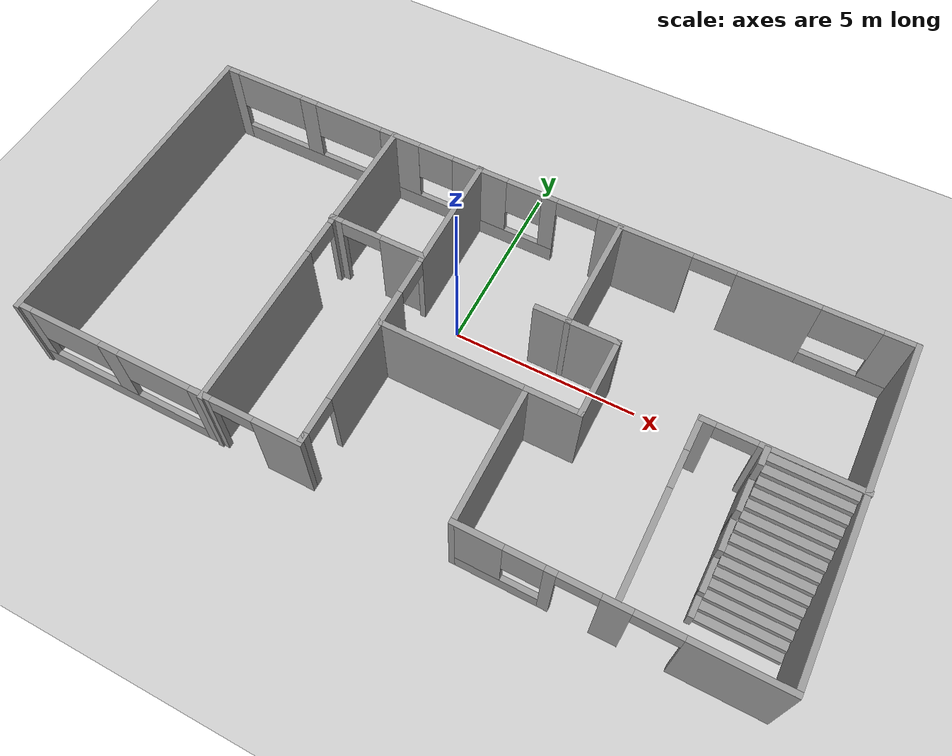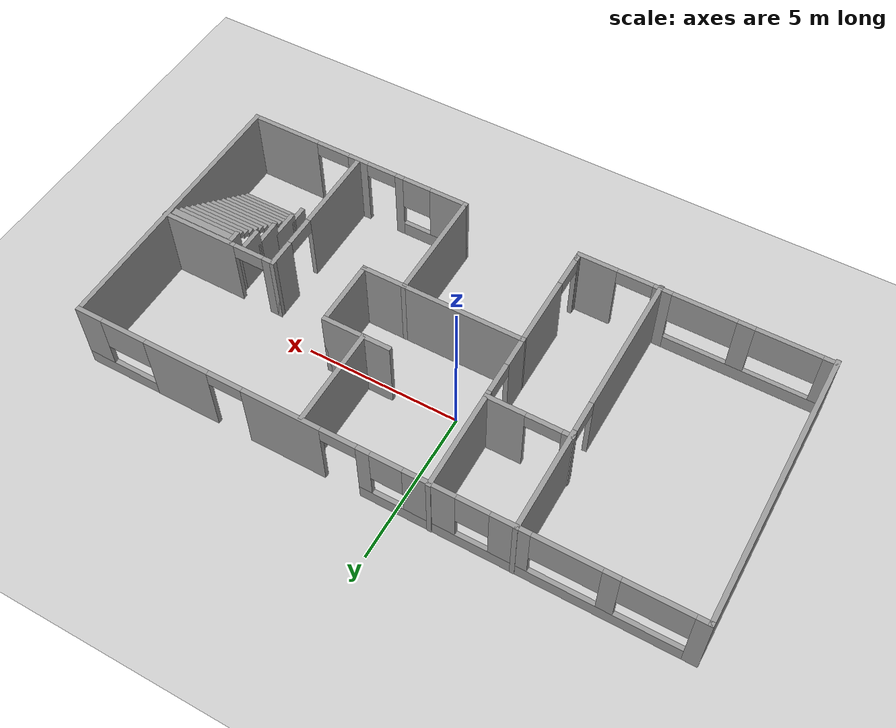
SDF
<sdf version="1.6">
 <world name="default">
  <light name="sun" type="directional">
   <pose>0 0 10 0 -0 0</pose>
   <diffuse>0.8 0.8 0.8 1</diffuse>
   <specular>0.2 0.2 0.2 1</specular>
   <attenuation>
    <range>1000</range>
    <constant>0.9</constant>
    <linear>0.01</linear>
    <quadratic>0.001</quadratic>
   </attenuation>
   <direction>-0.5 0.1 -0.9</direction>
  </light>
  <model name="ground_plane">
   <static>1</static>
   <link name="link">
    <collision name="collision">
     <geometry><plane><normal>0 0 1</normal><size>100 100</size></plane></geometry>
     <surface><friction><ode><mu>100</mu><mu2>50</mu2></ode></friction></surface>
    </collision>
    <visual name="visual">
     <cast_shadows>0</cast_shadows>
     <geometry><plane><normal>0 0 1</normal><size>100 100</size></plane></geometry>
     <material>
      <script><uri>file://media/materials/scripts/gazebo.material</uri><name>Gazebo/Grey</name></script>
     </material>
    </visual>
   </link>
  </model>
  <gravity>0 0 -9.8</gravity>
  <magnetic_field>6e-06 2.3e-05 -4.2e-05</magnetic_field>
  <atmosphere type="adiabatic"/>
  <physics name="default_physics" default="0" type="ode">
   <max_step_size>0.001</max_step_size>
   <real_time_factor>1</real_time_factor>
   <real_time_update_rate>1000</real_time_update_rate>
  </physics>
  <scene>
   <ambient>0.4 0.4 0.4 1</ambient>
   <background>0.7 0.7 0.7 1</background>
   <shadows>1</shadows>
   <fog>
    <color>0.9 0.9 0.9 0.8</color>
    <type>linear</type>
    <start>10</start>
    <end>50</end>
    <density>10</density>
   </fog>
   <grid>0</grid>
  </scene>
  <spherical_coordinates>
   <surface_model>EARTH_WGS84</surface_model>
   <latitude_deg>0</latitude_deg>
   <longitude_deg>0</longitude_deg>
   <elevation>0</elevation>
   <heading_deg>0</heading_deg>
  </spherical_coordinates>
  <model name="smokebot_demo_with_doors">
   <pose>0.720957 -1.03738 0 0 -0 0</pose>
   <link name="Stairs_0">
    <visual name="Stairs_0_Visual_0">
     <pose>8.51029 -3.08431 0.083333 0 -0 -3.14159</pose>
     <geometry><box><size>2.086 0.227997 0.166667</size></box></geometry>
     <material>
      <script><uri>file://media/materials/scripts/gazebo.material</uri><name>Gazebo/Grey</name></script>
      <ambient>1 1 1 1</ambient>
     </material>
     <meta><layer>0</layer></meta>
    </visual>
    <collision name="Stairs_0_Collision_0">
     <geometry><box><size>2.086 0.227997 0.166667</size></box></geometry>
     <pose>8.51029 -3.08431 0.083333 0 -0 -3.14159</pose>
    </collision>
    <visual name="Stairs_0_Visual_1">
     <pose>8.51029 -2.85631 0.25 0 -0 -3.14159</pose>
     <geometry><box><size>2.086 0.227997 0.166667</size></box></geometry>
     <material>
      <script><uri>file://media/materials/scripts/gazebo.material</uri><name>Gazebo/Grey</name></script>
      <ambient>1 1 1 1</ambient>
     </material>
     <meta><layer>0</layer></meta>
    </visual>
    <collision name="Stairs_0_Collision_1">
     <geometry><box><size>2.086 0.227997 0.166667</size></box></geometry>
     <pose>8.51029 -2.85631 0.25 0 -0 -3.14159</pose>
    </collision>
    <visual name="Stairs_0_Visual_2">
     <pose>8.51029 -2.62832 0.416667 0 -0 -3.14159</pose>
     <geometry><box><size>2.086 0.227997 0.166667</size></box></geometry>
     <material>
      <script><uri>file://media/materials/scripts/gazebo.material</uri><name>Gazebo/Grey</name></script>
      <ambient>1 1 1 1</ambient>
     </material>
     <meta><layer>0</layer></meta>
    </visual>
    <collision name="Stairs_0_Collision_2">
     <geometry><box><size>2.086 0.227997 0.166667</size></box></geometry>
     <pose>8.51029 -2.62832 0.416667 0 -0 -3.14159</pose>
    </collision>
    <visual name="Stairs_0_Visual_3">
     <pose>8.51029 -2.40032 0.583333 0 -0 -3.14159</pose>
     <geometry><box><size>2.086 0.227997 0.166667</size></box></geometry>
     <material>
      <script><uri>file://media/materials/scripts/gazebo.material</uri><name>Gazebo/Grey</name></script>
      <ambient>1 1 1 1</ambient>
     </material>
     <meta><layer>0</layer></meta>
    </visual>
    <collision name="Stairs_0_Collision_3">
     <geometry><box><size>2.086 0.227997 0.166667</size></box></geometry>
     <pose>8.51029 -2.40032 0.583333 0 -0 -3.14159</pose>
    </collision>
    <visual name="Stairs_0_Visual_4">
     <pose>8.51029 -2.17232 0.75 0 -0 -3.14159</pose>
     <geometry><box><size>2.086 0.227997 0.166667</size></box></geometry>
     <material>
      <script><uri>file://media/materials/scripts/gazebo.material</uri><name>Gazebo/Grey</name></script>
      <ambient>1 1 1 1</ambient>
     </material>
     <meta><layer>0</layer></meta>
    </visual>
    <collision name="Stairs_0_Collision_4">
     <geometry><box><size>2.086 0.227997 0.166667</size></box></geometry>
     <pose>8.51029 -2.17232 0.75 0 -0 -3.14159</pose>
    </collision>
    <visual name="Stairs_0_Visual_5">
     <pose>8.51029 -1.94433 0.916667 0 -0 -3.14159</pose>
     <geometry><box><size>2.086 0.227997 0.166667</size></box></geometry>
     <material>
      <script><uri>file://media/materials/scripts/gazebo.material</uri><name>Gazebo/Grey</name></script>
      <ambient>1 1 1 1</ambient>
     </material>
     <meta><layer>0</layer></meta>
    </visual>
    <collision name="Stairs_0_Collision_5">
     <geometry><box><size>2.086 0.227997 0.166667</size></box></geometry>
     <pose>8.51029 -1.94433 0.916667 0 -0 -3.14159</pose>
    </collision>
    <visual name="Stairs_0_Visual_6">
     <pose>8.51029 -1.71633 1.08333 0 -0 -3.14159</pose>
     <geometry><box><size>2.086 0.227997 0.166667</size></box></geometry>
     <material>
      <script><uri>file://media/materials/scripts/gazebo.material</uri><name>Gazebo/Grey</name></script>
      <ambient>1 1 1 1</ambient>
     </material>
     <meta><layer>0</layer></meta>
    </visual>
    <collision name="Stairs_0_Collision_6">
     <geometry><box><size>2.086 0.227997 0.166667</size></box></geometry>
     <pose>8.51029 -1.71633 1.08333 0 -0 -3.14159</pose>
    </collision>
    <visual name="Stairs_0_Visual_7">
     <pose>8.51029 -1.48833 1.25 0 -0 -3.14159</pose>
     <geometry><box><size>2.086 0.227997 0.166667</size></box></geometry>
     <material>
      <script><uri>file://media/materials/scripts/gazebo.material</uri><name>Gazebo/Grey</name></script>
      <ambient>1 1 1 1</ambient>
     </material>
     <meta><layer>0</layer></meta>
    </visual>
    <collision name="Stairs_0_Collision_7">
     <geometry><box><size>2.086 0.227997 0.166667</size></box></geometry>
     <pose>8.51029 -1.48833 1.25 0 -0 -3.14159</pose>
    </collision>
    <visual name="Stairs_0_Visual_8">
     <pose>8.51029 -1.26034 1.41667 0 -0 -3.14159</pose>
     <geometry><box><size>2.086 0.227997 0.166667</size></box></geometry>
     <material>
      <script><uri>file://media/materials/scripts/gazebo.material</uri><name>Gazebo/Grey</name></script>
      <ambient>1 1 1 1</ambient>
     </material>
     <meta><layer>0</layer></meta>
    </visual>
    <collision name="Stairs_0_Collision_8">
     <geometry><box><size>2.086 0.227997 0.166667</size></box></geometry>
     <pose>8.51029 -1.26034 1.41667 0 -0 -3.14159</pose>
    </collision>
    <visual name="Stairs_0_Visual_9">
     <pose>8.51029 -1.03234 1.58333 0 -0 -3.14159</pose>
     <geometry><box><size>2.086 0.227997 0.166667</size></box></geometry>
     <material>
      <script><uri>file://media/materials/scripts/gazebo.material</uri><name>Gazebo/Grey</name></script>
      <ambient>1 1 1 1</ambient>
     </material>
     <meta><layer>0</layer></meta>
    </visual>
    <collision name="Stairs_0_Collision_9">
     <geometry><box><size>2.086 0.227997 0.166667</size></box></geometry>
     <pose>8.51029 -1.03234 1.58333 0 -0 -3.14159</pose>
    </collision>
    <visual name="Stairs_0_Visual_10">
     <pose>8.51029 -0.804342 1.75 0 -0 -3.14159</pose>
     <geometry><box><size>2.086 0.227997 0.166667</size></box></geometry>
     <material>
      <script><uri>file://media/materials/scripts/gazebo.material</uri><name>Gazebo/Grey</name></script>
      <ambient>1 1 1 1</ambient>
     </material>
     <meta><layer>0</layer></meta>
    </visual>
    <collision name="Stairs_0_Collision_10">
     <geometry><box><size>2.086 0.227997 0.166667</size></box></geometry>
     <pose>8.51029 -0.804342 1.75 0 -0 -3.14159</pose>
    </collision>
    <visual name="Stairs_0_Visual_11">
     <pose>8.51029 -0.576345 1.91667 0 -0 -3.14159</pose>
     <geometry><box><size>2.086 0.227997 0.166667</size></box></geometry>
     <material>
      <script><uri>file://media/materials/scripts/gazebo.material</uri><name>Gazebo/Grey</name></script>
      <ambient>1 1 1 1</ambient>
     </material>
     <meta><layer>0</layer></meta>
    </visual>
    <collision name="Stairs_0_Collision_11">
     <geometry><box><size>2.086 0.227997 0.166667</size></box></geometry>
     <pose>8.51029 -0.576345 1.91667 0 -0 -3.14159</pose>
    </collision>
    <visual name="Stairs_0_Visual_12">
     <pose>8.51029 -0.348348 2.08333 0 -0 -3.14159</pose>
     <geometry><box><size>2.086 0.227997 0.166667</size></box></geometry>
     <material>
      <script><uri>file://media/materials/scripts/gazebo.material</uri><name>Gazebo/Grey</name></script>
      <ambient>1 1 1 1</ambient>
     </material>
     <meta><layer>0</layer></meta>
    </visual>
    <collision name="Stairs_0_Collision_12">
     <geometry><box><size>2.086 0.227997 0.166667</size></box></geometry>
     <pose>8.51029 -0.348348 2.08333 0 -0 -3.14159</pose>
    </collision>
    <visual name="Stairs_0_Visual_13">
     <pose>8.51029 -0.120351 2.25 0 -0 -3.14159</pose>
     <geometry><box><size>2.086 0.227997 0.166667</size></box></geometry>
     <material>
      <script><uri>file://media/materials/scripts/gazebo.material</uri><name>Gazebo/Grey</name></script>
      <ambient>1 1 1 1</ambient>
     </material>
     <meta><layer>0</layer></meta>
    </visual>
    <collision name="Stairs_0_Collision_13">
     <geometry><box><size>2.086 0.227997 0.166667</size></box></geometry>
     <pose>8.51029 -0.120351 2.25 0 -0 -3.14159</pose>
    </collision>
    <visual name="Stairs_0_Visual_14">
     <pose>8.51029 0.107646 2.41667 0 -0 -3.14159</pose>
     <geometry><box><size>2.086 0.227997 0.166667</size></box></geometry>
     <material>
      <script><uri>file://media/materials/scripts/gazebo.material</uri><name>Gazebo/Grey</name></script>
      <ambient>1 1 1 1</ambient>
     </material>
     <meta><layer>0</layer></meta>
    </visual>
    <collision name="Stairs_0_Collision_14">
     <geometry><box><size>2.086 0.227997 0.166667</size></box></geometry>
     <pose>8.51029 0.107646 2.41667 0 -0 -3.14159</pose>
    </collision>
   </link>
   <link name="Wall_0">
    <collision name="Wall_0_Collision">
     <geometry><box><size>9 0.15 2.5</size></box></geometry>
     <pose>0 0 1.25 0 -0 0</pose>
    </collision>
    <visual name="Wall_0_Visual">
     <pose>0 0 1.25 0 -0 0</pose>
     <geometry><box><size>9 0.15 2.5</size></box></geometry>
     <material>
      <script><uri>file://media/materials/scripts/gazebo.material</uri><name>Gazebo/Grey</name></script>
      <ambient>1 1 1 1</ambient>
     </material>
     <meta><layer>0</layer></meta>
    </visual>
    <pose>-9.68735 -0.009944 0 0 -0 1.5708</pose>
   </link>
   <link name="Wall_1">
    <pose>-0.012352 4.41506 0 0 -0 0</pose>
    <visual name="Wall_1_Visual_0">
     <pose>-9.51661 0 1.25 0 -0 0</pose>
     <geometry><box><size>0.466772 0.15 2.5</size></box></geometry>
     <material>
      <script><uri>file://media/materials/scripts/gazebo.material</uri><name>Gazebo/Grey</name></script>
      <ambient>1 1 1 1</ambient>
     </material>
     <meta><layer>0</layer></meta>
    </visual>
    <collision name="Wall_1_Collision_0">
     <geometry><box><size>0.466772 0.15 2.5</size></box></geometry>
     <pose>-9.51661 0 1.25 0 -0 0</pose>
    </collision>
    <visual name="Wall_1_Visual_1">
     <pose>2.80686 0 1.25 0 -0 0</pose>
     <geometry><box><size>2.52995 0.15 2.5</size></box></geometry>
     <material>
      <script><uri>file://media/materials/scripts/gazebo.material</uri><name>Gazebo/Grey</name></script>
      <ambient>1 1 1 1</ambient>
     </material>
     <meta><layer>0</layer></meta>
    </visual>
    <collision name="Wall_1_Collision_1">
     <geometry><box><size>2.52995 0.15 2.5</size></box></geometry>
     <pose>2.80686 0 1.25 0 -0 0</pose>
    </collision>
    <visual name="Wall_1_Visual_2">
     <pose>6.27798 0 1.25 0 -0 0</pose>
     <geometry><box><size>2.14228 0.15 2.5</size></box></geometry>
     <material>
      <script><uri>file://media/materials/scripts/gazebo.material</uri><name>Gazebo/Grey</name></script>
      <ambient>1 1 1 1</ambient>
     </material>
     <meta><layer>0</layer></meta>
    </visual>
    <collision name="Wall_1_Collision_2">
     <geometry><box><size>2.14228 0.15 2.5</size></box></geometry>
     <pose>6.27798 0 1.25 0 -0 0</pose>
    </collision>
    <visual name="Wall_1_Visual_3">
     <pose>-4.43817 0 0.25 0 -0 0</pose>
     <geometry><box><size>9.69011 0.15 0.5</size></box></geometry>
     <material>
      <script><uri>file://media/materials/scripts/gazebo.material</uri><name>Gazebo/Grey</name></script>
      <ambient>1 1 1 1</ambient>
     </material>
     <meta><layer>0</layer></meta>
    </visual>
    <collision name="Wall_1_Collision_3">
     <geometry><box><size>9.69011 0.15 0.5</size></box></geometry>
     <pose>-4.43817 0 0.25 0 -0 0</pose>
    </collision>
    <visual name="Wall_1_Visual_4">
     <pose>8.54956 0 0.25 0 -0 0</pose>
     <geometry><box><size>2.40088 0.15 0.5</size></box></geometry>
     <material>
      <script><uri>file://media/materials/scripts/gazebo.material</uri><name>Gazebo/Grey</name></script>
      <ambient>1 1 1 1</ambient>
     </material>
     <meta><layer>0</layer></meta>
    </visual>
    <collision name="Wall_1_Collision_4">
     <geometry><box><size>2.40088 0.15 0.5</size></box></geometry>
     <pose>8.54956 0 0.25 0 -0 0</pose>
    </collision>
    <visual name="Wall_1_Visual_5">
     <pose>-7.03469 0 1.5 0 -0 0</pose>
     <geometry><box><size>0.49708 0.15 2</size></box></geometry>
     <material>
      <script><uri>file://media/materials/scripts/gazebo.material</uri><name>Gazebo/Grey</name></script>
      <ambient>1 1 1 1</ambient>
     </material>
     <meta><layer>0</layer></meta>
    </visual>
    <collision name="Wall_1_Collision_5">
     <geometry><box><size>0.49708 0.15 2</size></box></geometry>
     <pose>-7.03469 0 1.5 0 -0 0</pose>
    </collision>
    <visual name="Wall_1_Visual_6">
     <pose>-4.19771 0 1.5 0 -0 0</pose>
     <geometry><box><size>1.17687 0.15 2</size></box></geometry>
     <material>
      <script><uri>file://media/materials/scripts/gazebo.material</uri><name>Gazebo/Grey</name></script>
      <ambient>1 1 1 1</ambient>
     </material>
     <meta><layer>0</layer></meta>
    </visual>
    <collision name="Wall_1_Collision_6">
     <geometry><box><size>1.17687 0.15 2</size></box></geometry>
     <pose>-4.19771 0 1.5 0 -0 0</pose>
    </collision>
    <visual name="Wall_1_Visual_7">
     <pose>-1.81114 0 1.5 0 -0 0</pose>
     <geometry><box><size>1.59626 0.15 2</size></box></geometry>
     <material>
      <script><uri>file://media/materials/scripts/gazebo.material</uri><name>Gazebo/Grey</name></script>
      <ambient>1 1 1 1</ambient>
     </material>
     <meta><layer>0</layer></meta>
    </visual>
    <collision name="Wall_1_Collision_7">
     <geometry><box><size>1.59626 0.15 2</size></box></geometry>
     <pose>-1.81114 0 1.5 0 -0 0</pose>
    </collision>
    <visual name="Wall_1_Visual_8">
     <pose>0.196937 0 1.5 0 -0 0</pose>
     <geometry><box><size>0.419895 0.15 2</size></box></geometry>
     <material>
      <script><uri>file://media/materials/scripts/gazebo.material</uri><name>Gazebo/Grey</name></script>
      <ambient>1 1 1 1</ambient>
     </material>
     <meta><layer>0</layer></meta>
    </visual>
    <collision name="Wall_1_Collision_8">
     <geometry><box><size>0.419895 0.15 2</size></box></geometry>
     <pose>0.196937 0 1.5 0 -0 0</pose>
    </collision>
    <visual name="Wall_1_Visual_9">
     <pose>0.196937 0 1.5 0 -0 0</pose>
     <geometry><box><size>0.419895 0.15 2</size></box></geometry>
     <material>
      <script><uri>file://media/materials/scripts/gazebo.material</uri><name>Gazebo/Grey</name></script>
      <ambient>1 1 1 1</ambient>
     </material>
     <meta><layer>0</layer></meta>
    </visual>
    <collision name="Wall_1_Collision_9">
     <geometry><box><size>0.419895 0.15 2</size></box></geometry>
     <pose>0.196937 0 1.5 0 -0 0</pose>
    </collision>
    <visual name="Wall_1_Visual_10">
     <pose>9.29956 0 1.5 0 -0 0</pose>
     <geometry><box><size>0.900883 0.15 2</size></box></geometry>
     <material>
      <script><uri>file://media/materials/scripts/gazebo.material</uri><name>Gazebo/Grey</name></script>
      <ambient>1 1 1 1</ambient>
     </material>
     <meta><layer>0</layer></meta>
    </visual>
    <collision name="Wall_1_Collision_10">
     <geometry><box><size>0.900883 0.15 2</size></box></geometry>
     <pose>9.29956 0 1.5 0 -0 0</pose>
    </collision>
    <visual name="Wall_1_Visual_11">
     <pose>-8.28323 0 1.9 0 -0 0</pose>
     <geometry><box><size>2 0.15 1.2</size></box></geometry>
     <material>
      <script><uri>file://media/materials/scripts/gazebo.material</uri><name>Gazebo/Grey</name></script>
      <ambient>1 1 1 1</ambient>
     </material>
     <meta><layer>0</layer></meta>
    </visual>
    <collision name="Wall_1_Collision_11">
     <geometry><box><size>2 0.15 1.2</size></box></geometry>
     <pose>-8.28323 0 1.9 0 -0 0</pose>
    </collision>
    <visual name="Wall_1_Visual_12">
     <pose>8.09912 0 1.9 0 -0 0</pose>
     <geometry><box><size>1.5 0.15 1.2</size></box></geometry>
     <material>
      <script><uri>file://media/materials/scripts/gazebo.material</uri><name>Gazebo/Grey</name></script>
      <ambient>1 1 1 1</ambient>
     </material>
     <meta><layer>0</layer></meta>
    </visual>
    <collision name="Wall_1_Collision_12">
     <geometry><box><size>1.5 0.15 1.2</size></box></geometry>
     <pose>8.09912 0 1.9 0 -0 0</pose>
    </collision>
    <visual name="Wall_1_Visual_13">
     <pose>-5.78615 0 1.9 0 -0 0</pose>
     <geometry><box><size>2 0.15 1.2</size></box></geometry>
     <material>
      <script><uri>file://media/materials/scripts/gazebo.material</uri><name>Gazebo/Grey</name></script>
      <ambient>1 1 1 1</ambient>
     </material>
     <meta><layer>0</layer></meta>
    </visual>
    <collision name="Wall_1_Collision_13">
     <geometry><box><size>2 0.15 1.2</size></box></geometry>
     <pose>-5.78615 0 1.9 0 -0 0</pose>
    </collision>
    <visual name="Wall_1_Visual_14">
     <pose>-3.10927 0 1.9 0 -0 0</pose>
     <geometry><box><size>1 0.15 1.2</size></box></geometry>
     <material>
      <script><uri>file://media/materials/scripts/gazebo.material</uri><name>Gazebo/Grey</name></script>
      <ambient>1 1 1 1</ambient>
     </material>
     <meta><layer>0</layer></meta>
    </visual>
    <collision name="Wall_1_Collision_14">
     <geometry><box><size>1 0.15 1.2</size></box></geometry>
     <pose>-3.10927 0 1.9 0 -0 0</pose>
    </collision>
    <visual name="Wall_1_Visual_15">
     <pose>-0.513011 0 1.9 0 -0 0</pose>
     <geometry><box><size>1 0.15 1.2</size></box></geometry>
     <material>
      <script><uri>file://media/materials/scripts/gazebo.material</uri><name>Gazebo/Grey</name></script>
      <ambient>1 1 1 1</ambient>
     </material>
     <meta><layer>0</layer></meta>
    </visual>
    <collision name="Wall_1_Collision_15">
     <geometry><box><size>1 0.15 1.2</size></box></geometry>
     <pose>-0.513011 0 1.9 0 -0 0</pose>
    </collision>
    <visual name="Wall_1_Visual_16">
     <pose>4.63934 0 2.25 0 -0 0</pose>
     <geometry><box><size>1.135 0.15 0.5</size></box></geometry>
     <material>
      <script><uri>file://media/materials/scripts/gazebo.material</uri><name>Gazebo/Grey</name></script>
      <ambient>1 1 1 1</ambient>
     </material>
     <meta><layer>0</layer></meta>
    </visual>
    <collision name="Wall_1_Collision_16">
     <geometry><box><size>1.135 0.15 0.5</size></box></geometry>
     <pose>4.63934 0 2.25 0 -0 0</pose>
    </collision>
    <visual name="Wall_1_Visual_17">
     <pose>0.974384 0 2.25 0 -0 0</pose>
     <geometry><box><size>1.135 0.15 0.5</size></box></geometry>
     <material>
      <script><uri>file://media/materials/scripts/gazebo.material</uri><name>Gazebo/Grey</name></script>
      <ambient>1 1 1 1</ambient>
     </material>
     <meta><layer>0</layer></meta>
    </visual>
    <collision name="Wall_1_Collision_17">
     <geometry><box><size>1.135 0.15 0.5</size></box></geometry>
     <pose>0.974384 0 2.25 0 -0 0</pose>
    </collision>
    <visual name="Wall_1_Visual_18">
     <pose>0.974384 0 2.25 0 -0 0</pose>
     <geometry><box><size>1.135 0.15 0.5</size></box></geometry>
     <material>
      <script><uri>file://media/materials/scripts/gazebo.material</uri><name>Gazebo/Grey</name></script>
      <ambient>1 1 1 1</ambient>
     </material>
     <meta><layer>0</layer></meta>
    </visual>
    <collision name="Wall_1_Collision_18">
     <geometry><box><size>1.135 0.15 0.5</size></box></geometry>
     <pose>0.974384 0 2.25 0 -0 0</pose>
    </collision>
   </link>
   <link name="Wall_11">
    <pose>-4.37652 -0.00319 0 0 -0 1.5708</pose>
    <visual name="Wall_11_Visual_0">
     <pose>-2.19033 0 1.25 0 -0 0</pose>
     <geometry><box><size>4.61934 0.15 2.5</size></box></geometry>
     <material>
      <script><uri>file://media/materials/scripts/gazebo.material</uri><name>Gazebo/Grey</name></script>
      <ambient>1 1 1 1</ambient>
     </material>
     <meta><layer>0</layer></meta>
    </visual>
    <collision name="Wall_11_Collision_0">
     <geometry><box><size>4.61934 0.15 2.5</size></box></geometry>
     <pose>-2.19033 0 1.25 0 -0 0</pose>
    </collision>
    <visual name="Wall_11_Visual_1">
     <pose>2.80967 0 1.25 0 -0 0</pose>
     <geometry><box><size>3.38066 0.15 2.5</size></box></geometry>
     <material>
      <script><uri>file://media/materials/scripts/gazebo.material</uri><name>Gazebo/Grey</name></script>
      <ambient>1 1 1 1</ambient>
     </material>
     <meta><layer>0</layer></meta>
    </visual>
    <collision name="Wall_11_Collision_1">
     <geometry><box><size>3.38066 0.15 2.5</size></box></geometry>
     <pose>2.80967 0 1.25 0 -0 0</pose>
    </collision>
    <visual name="Wall_11_Visual_2">
     <pose>0.619339 0 2.25 0 -0 0</pose>
     <geometry><box><size>1 0.15 0.5</size></box></geometry>
     <material>
      <script><uri>file://media/materials/scripts/gazebo.material</uri><name>Gazebo/Grey</name></script>
      <ambient>1 1 1 1</ambient>
     </material>
     <meta><layer>0</layer></meta>
    </visual>
    <collision name="Wall_11_Collision_2">
     <geometry><box><size>1 0.15 0.5</size></box></geometry>
     <pose>0.619339 0 2.25 0 -0 0</pose>
    </collision>
   </link>
   <link name="Wall_13">
    <pose>-1.81036 1.79967 0 0 0 -1.56206</pose>
    <visual name="Wall_13_Visual_0">
     <pose>-1.02154 0 1.25 0 -0 0</pose>
     <geometry><box><size>3.37636 0.15 2.5</size></box></geometry>
     <material>
      <script><uri>file://media/materials/scripts/gazebo.material</uri><name>Gazebo/Grey</name></script>
      <ambient>1 1 1 1</ambient>
     </material>
     <meta><layer>0</layer></meta>
    </visual>
    <collision name="Wall_13_Collision_0">
     <geometry><box><size>3.37636 0.15 2.5</size></box></geometry>
     <pose>-1.02154 0 1.25 0 -0 0</pose>
    </collision>
    <visual name="Wall_13_Visual_1">
     <pose>2.18818 0 1.25 0 -0 0</pose>
     <geometry><box><size>1.04307 0.15 2.5</size></box></geometry>
     <material>
      <script><uri>file://media/materials/scripts/gazebo.material</uri><name>Gazebo/Grey</name></script>
      <ambient>1 1 1 1</ambient>
     </material>
     <meta><layer>0</layer></meta>
    </visual>
    <collision name="Wall_13_Collision_1">
     <geometry><box><size>1.04307 0.15 2.5</size></box></geometry>
     <pose>2.18818 0 1.25 0 -0 0</pose>
    </collision>
    <visual name="Wall_13_Visual_2">
     <pose>1.16664 0 2.25 0 -0 0</pose>
     <geometry><box><size>1 0.15 0.5</size></box></geometry>
     <material>
      <script><uri>file://media/materials/scripts/gazebo.material</uri><name>Gazebo/Grey</name></script>
      <ambient>1 1 1 1</ambient>
     </material>
     <meta><layer>0</layer></meta>
    </visual>
    <collision name="Wall_13_Collision_2">
     <geometry><box><size>1 0.15 0.5</size></box></geometry>
     <pose>1.16664 0 2.25 0 -0 0</pose>
    </collision>
   </link>
   <link name="Wall_15">
    <pose>-3.1091 1.31984 0 0 -0 3.14159</pose>
    <visual name="Wall_15_Visual_0">
     <pose>-0.73647 0 1.25 0 -0 0</pose>
     <geometry><box><size>1.27706 0.15 2.5</size></box></geometry>
     <material>
      <script><uri>file://media/materials/scripts/gazebo.material</uri><name>Gazebo/Grey</name></script>
      <ambient>1 1 1 1</ambient>
     </material>
     <meta><layer>0</layer></meta>
    </visual>
    <collision name="Wall_15_Collision_0">
     <geometry><box><size>1.27706 0.15 2.5</size></box></geometry>
     <pose>-0.73647 0 1.25 0 -0 0</pose>
    </collision>
    <visual name="Wall_15_Visual_1">
     <pose>1.18853 0 1.25 0 -0 0</pose>
     <geometry><box><size>0.37294 0.15 2.5</size></box></geometry>
     <material>
      <script><uri>file://media/materials/scripts/gazebo.material</uri><name>Gazebo/Grey</name></script>
      <ambient>1 1 1 1</ambient>
     </material>
     <meta><layer>0</layer></meta>
    </visual>
    <collision name="Wall_15_Collision_1">
     <geometry><box><size>0.37294 0.15 2.5</size></box></geometry>
     <pose>1.18853 0 1.25 0 -0 0</pose>
    </collision>
    <visual name="Wall_15_Visual_2">
     <pose>0.45206 0 2.25 0 -0 0</pose>
     <geometry><box><size>1.1 0.15 0.5</size></box></geometry>
     <material>
      <script><uri>file://media/materials/scripts/gazebo.material</uri><name>Gazebo/Grey</name></script>
      <ambient>1 1 1 1</ambient>
     </material>
     <meta><layer>0</layer></meta>
    </visual>
    <collision name="Wall_15_Collision_2">
     <geometry><box><size>1.1 0.15 0.5</size></box></geometry>
     <pose>0.45206 0 2.25 0 -0 0</pose>
    </collision>
   </link>
   <link name="Wall_17">
    <pose>7.76235 0.306296 0 0 -0 3.14159</pose>
    <visual name="Wall_17_Visual_0">
     <pose>-0.714008 0 1.25 0 -0 0</pose>
     <geometry><box><size>2.57198 0.15 2.5</size></box></geometry>
     <material>
      <script><uri>file://media/materials/scripts/gazebo.material</uri><name>Gazebo/Grey</name></script>
      <ambient>1 1 1 1</ambient>
     </material>
     <meta><layer>0</layer></meta>
    </visual>
    <collision name="Wall_17_Collision_0">
     <geometry><box><size>2.57198 0.15 2.5</size></box></geometry>
     <pose>-0.714008 0 1.25 0 -0 0</pose>
    </collision>
    <visual name="Wall_17_Visual_1">
     <pose>1.78599 0 1.25 0 -0 0</pose>
     <geometry><box><size>0.428016 0.15 2.5</size></box></geometry>
     <material>
      <script><uri>file://media/materials/scripts/gazebo.material</uri><name>Gazebo/Grey</name></script>
      <ambient>1 1 1 1</ambient>
     </material>
     <meta><layer>0</layer></meta>
    </visual>
    <collision name="Wall_17_Collision_1">
     <geometry><box><size>0.428016 0.15 2.5</size></box></geometry>
     <pose>1.78599 0 1.25 0 -0 0</pose>
    </collision>
    <visual name="Wall_17_Visual_2">
     <pose>1.07198 0 2.25 0 -0 0</pose>
     <geometry><box><size>1 0.15 0.5</size></box></geometry>
     <material>
      <script><uri>file://media/materials/scripts/gazebo.material</uri><name>Gazebo/Grey</name></script>
      <ambient>1 1 1 1</ambient>
     </material>
     <meta><layer>0</layer></meta>
    </visual>
    <collision name="Wall_17_Collision_2">
     <geometry><box><size>1 0.15 0.5</size></box></geometry>
     <pose>1.07198 0 2.25 0 -0 0</pose>
    </collision>
   </link>
   <link name="Wall_18">
    <pose>5.83735 -1.9937 0 0 0 -1.5708</pose>
    <visual name="Wall_18_Visual_0">
     <pose>-1.89581 0 1.25 0 -0 0</pose>
     <geometry><box><size>0.958384 0.15 2.5</size></box></geometry>
     <material>
      <script><uri>file://media/materials/scripts/gazebo.material</uri><name>Gazebo/Grey</name></script>
      <ambient>1 1 1 1</ambient>
     </material>
     <meta><layer>0</layer></meta>
    </visual>
    <collision name="Wall_18_Collision_0">
     <geometry><box><size>0.958384 0.15 2.5</size></box></geometry>
     <pose>-1.89581 0 1.25 0 -0 0</pose>
    </collision>
    <visual name="Wall_18_Visual_1">
     <pose>0.979192 0 1.25 0 -0 0</pose>
     <geometry><box><size>2.79162 0.15 2.5</size></box></geometry>
     <material>
      <script><uri>file://media/materials/scripts/gazebo.material</uri><name>Gazebo/Grey</name></script>
      <ambient>1 1 1 1</ambient>
     </material>
     <meta><layer>0</layer></meta>
    </visual>
    <collision name="Wall_18_Collision_1">
     <geometry><box><size>2.79162 0.15 2.5</size></box></geometry>
     <pose>0.979192 0 1.25 0 -0 0</pose>
    </collision>
    <visual name="Wall_18_Visual_2">
     <pose>-0.916616 0 2.25 0 -0 0</pose>
     <geometry><box><size>1 0.15 0.5</size></box></geometry>
     <material>
      <script><uri>file://media/materials/scripts/gazebo.material</uri><name>Gazebo/Grey</name></script>
      <ambient>1 1 1 1</ambient>
     </material>
     <meta><layer>0</layer></meta>
    </visual>
    <collision name="Wall_18_Collision_2">
     <geometry><box><size>1 0.15 0.5</size></box></geometry>
     <pose>-0.916616 0 2.25 0 -0 0</pose>
    </collision>
   </link>
   <link name="Wall_2">
    <collision name="Wall_2_Collision">
     <geometry><box><size>9 0.15 2.5</size></box></geometry>
     <pose>0 0 1.25 0 -0 0</pose>
    </collision>
    <visual name="Wall_2_Visual">
     <pose>0 0 1.25 0 -0 0</pose>
     <geometry><box><size>9 0.15 2.5</size></box></geometry>
     <material>
      <script><uri>file://media/materials/scripts/gazebo.material</uri><name>Gazebo/Grey</name></script>
      <ambient>1 1 1 1</ambient>
     </material>
     <meta><layer>0</layer></meta>
    </visual>
    <pose>9.66265 -0.009944 0 0 0 -1.5708</pose>
   </link>
   <link name="Wall_20">
    <collision name="Wall_20_Collision">
     <geometry><box><size>1.5 0.15 2.5</size></box></geometry>
     <pose>0 0 1.25 0 -0 0</pose>
    </collision>
    <visual name="Wall_20_Visual">
     <pose>0 0 1.25 0 -0 0</pose>
     <geometry><box><size>1.5 0.15 2.5</size></box></geometry>
     <material>
      <script><uri>file://media/materials/scripts/gazebo.material</uri><name>Gazebo/Grey</name></script>
      <ambient>1 1 1 1</ambient>
     </material>
     <meta><layer>0</layer></meta>
    </visual>
    <pose>2.73765 -0.834944 0 0 -0 0</pose>
   </link>
   <link name="Wall_21">
    <collision name="Wall_21_Collision">
     <geometry><box><size>2.25 0.15 2.5</size></box></geometry>
     <pose>0 0 1.25 0 -0 0</pose>
    </collision>
    <visual name="Wall_21_Visual">
     <pose>0 0 1.25 0 -0 0</pose>
     <geometry><box><size>2.25 0.15 2.5</size></box></geometry>
     <material>
      <script><uri>file://media/materials/scripts/gazebo.material</uri><name>Gazebo/Grey</name></script>
      <ambient>1 1 1 1</ambient>
     </material>
     <meta><layer>0</layer></meta>
    </visual>
    <pose>3.41265 0.215056 0 0 -0 1.5708</pose>
   </link>
   <link name="Wall_22">
    <collision name="Wall_22_Collision">
     <geometry><box><size>2.25 0.15 2.5</size></box></geometry>
     <pose>0 0 1.25 0 -0 0</pose>
    </collision>
    <visual name="Wall_22_Visual">
     <pose>0 0 1.25 0 -0 0</pose>
     <geometry><box><size>2.25 0.15 2.5</size></box></geometry>
     <material>
      <script><uri>file://media/materials/scripts/gazebo.material</uri><name>Gazebo/Grey</name></script>
      <ambient>1 1 1 1</ambient>
     </material>
     <meta><layer>0</layer></meta>
    </visual>
    <pose>2.36265 1.26506 0 0 -0 3.14159</pose>
   </link>
   <link name="Wall_24">
    <collision name="Wall_24_Collision">
     <geometry><box><size>3.25 0.15 2.5</size></box></geometry>
     <pose>0 0 1.25 0 -0 0</pose>
    </collision>
    <visual name="Wall_24_Visual">
     <pose>0 0 1.25 0 -0 0</pose>
     <geometry><box><size>3.25 0.15 2.5</size></box></geometry>
     <material>
      <script><uri>file://media/materials/scripts/gazebo.material</uri><name>Gazebo/Grey</name></script>
      <ambient>1 1 1 1</ambient>
     </material>
     <meta><layer>0</layer></meta>
    </visual>
    <pose>2.13812 2.80754 0 0 -0 1.5708</pose>
   </link>
   <link name="Wall_26">
    <collision name="Wall_26_Collision">
     <geometry><box><size>0.70426 0.15 0.5</size></box></geometry>
     <pose>0 0 0.25 0 -0 0</pose>
    </collision>
    <visual name="Wall_26_Visual">
     <pose>0 0 0.25 0 -0 0</pose>
     <geometry><box><size>0.70426 0.15 0.5</size></box></geometry>
     <material>
      <script><uri>file://media/materials/scripts/gazebo.material</uri><name>Gazebo/Grey</name></script>
      <ambient>1 1 1 1</ambient>
     </material>
     <meta><layer>0</layer></meta>
    </visual>
    <pose>7.39531 -2.93826 0 0 -0 1.5708</pose>
   </link>
   <link name="Wall_28">
    <collision name="Wall_28_Collision">
     <geometry><box><size>1.0556 0.15 0.75</size></box></geometry>
     <pose>0 0 0.375 0 -0 0</pose>
    </collision>
    <visual name="Wall_28_Visual">
     <pose>0 0 0.375 0 -0 0</pose>
     <geometry><box><size>1.0556 0.15 0.75</size></box></geometry>
     <material>
      <script><uri>file://media/materials/scripts/gazebo.material</uri><name>Gazebo/Grey</name></script>
      <ambient>1 1 1 1</ambient>
     </material>
     <meta><layer>0</layer></meta>
    </visual>
    <pose>7.40081 -2.21998 0 0 -0 1.55865</pose>
   </link>
   <link name="Wall_3">
    <pose>5.86265 -4.43494 0 0 -0 3.14159</pose>
    <visual name="Wall_3_Visual_0">
     <pose>-2.67525 0 1.25 0 -0 0</pose>
     <geometry><box><size>2.3995 0.15 2.5</size></box></geometry>
     <material>
      <script><uri>file://media/materials/scripts/gazebo.material</uri><name>Gazebo/Grey</name></script>
      <ambient>1 1 1 1</ambient>
     </material>
     <meta><layer>0</layer></meta>
    </visual>
    <collision name="Wall_3_Collision_0">
     <geometry><box><size>2.3995 0.15 2.5</size></box></geometry>
     <pose>-2.67525 0 1.25 0 -0 0</pose>
    </collision>
    <visual name="Wall_3_Visual_1">
     <pose>0.008362 0 1.25 0 -0 0</pose>
     <geometry><box><size>0.697717 0.15 2.5</size></box></geometry>
     <material>
      <script><uri>file://media/materials/scripts/gazebo.material</uri><name>Gazebo/Grey</name></script>
      <ambient>1 1 1 1</ambient>
     </material>
     <meta><layer>0</layer></meta>
    </visual>
    <collision name="Wall_3_Collision_1">
     <geometry><box><size>0.697717 0.15 2.5</size></box></geometry>
     <pose>0.008362 0 1.25 0 -0 0</pose>
    </collision>
    <visual name="Wall_3_Visual_2">
     <pose>1.49779 0 1.25 0 -0 0</pose>
     <geometry><box><size>0.281131 0.15 2.5</size></box></geometry>
     <material>
      <script><uri>file://media/materials/scripts/gazebo.material</uri><name>Gazebo/Grey</name></script>
      <ambient>1 1 1 1</ambient>
     </material>
     <meta><layer>0</layer></meta>
    </visual>
    <collision name="Wall_3_Collision_2">
     <geometry><box><size>0.281131 0.15 2.5</size></box></geometry>
     <pose>1.49779 0 1.25 0 -0 0</pose>
    </collision>
    <visual name="Wall_3_Visual_3">
     <pose>2.75668 0 0.25 0 -0 0</pose>
     <geometry><box><size>2.23665 0.15 0.5</size></box></geometry>
     <material>
      <script><uri>file://media/materials/scripts/gazebo.material</uri><name>Gazebo/Grey</name></script>
      <ambient>1 1 1 1</ambient>
     </material>
     <meta><layer>0</layer></meta>
    </visual>
    <collision name="Wall_3_Collision_3">
     <geometry><box><size>2.23665 0.15 0.5</size></box></geometry>
     <pose>2.75668 0 0.25 0 -0 0</pose>
    </collision>
    <visual name="Wall_3_Visual_4">
     <pose>3.23168 0 1.5 0 -0 0</pose>
     <geometry><box><size>1.28665 0.15 2</size></box></geometry>
     <material>
      <script><uri>file://media/materials/scripts/gazebo.material</uri><name>Gazebo/Grey</name></script>
      <ambient>1 1 1 1</ambient>
     </material>
     <meta><layer>0</layer></meta>
    </visual>
    <collision name="Wall_3_Collision_4">
     <geometry><box><size>1.28665 0.15 2</size></box></geometry>
     <pose>3.23168 0 1.5 0 -0 0</pose>
    </collision>
    <visual name="Wall_3_Visual_5">
     <pose>2.11335 0 1.9 0 -0 0</pose>
     <geometry><box><size>0.95 0.15 1.2</size></box></geometry>
     <material>
      <script><uri>file://media/materials/scripts/gazebo.material</uri><name>Gazebo/Grey</name></script>
      <ambient>1 1 1 1</ambient>
     </material>
     <meta><layer>0</layer></meta>
    </visual>
    <collision name="Wall_3_Collision_5">
     <geometry><box><size>0.95 0.15 1.2</size></box></geometry>
     <pose>2.11335 0 1.9 0 -0 0</pose>
    </collision>
    <visual name="Wall_3_Visual_6">
     <pose>-0.907997 0 2.25 0 -0 0</pose>
     <geometry><box><size>1.135 0.15 0.5</size></box></geometry>
     <material>
      <script><uri>file://media/materials/scripts/gazebo.material</uri><name>Gazebo/Grey</name></script>
      <ambient>1 1 1 1</ambient>
     </material>
     <meta><layer>0</layer></meta>
    </visual>
    <collision name="Wall_3_Collision_6">
     <geometry><box><size>1.135 0.15 0.5</size></box></geometry>
     <pose>-0.907997 0 2.25 0 -0 0</pose>
    </collision>
    <visual name="Wall_3_Visual_7">
     <pose>0.85722 0 2.25 0 -0 0</pose>
     <geometry><box><size>1 0.15 0.5</size></box></geometry>
     <material>
      <script><uri>file://media/materials/scripts/gazebo.material</uri><name>Gazebo/Grey</name></script>
      <ambient>1 1 1 1</ambient>
     </material>
     <meta><layer>0</layer></meta>
    </visual>
    <collision name="Wall_3_Collision_7">
     <geometry><box><size>1 0.15 0.5</size></box></geometry>
     <pose>0.85722 0 2.25 0 -0 0</pose>
    </collision>
   </link>
   <link name="Wall_30">
    <collision name="Wall_30_Collision">
     <geometry><box><size>0.983166 0.15 1.2</size></box></geometry>
     <pose>0 0 0.6 0 -0 0</pose>
    </collision>
    <visual name="Wall_30_Visual">
     <pose>0 0 0.6 0 -0 0</pose>
     <geometry><box><size>0.983166 0.15 1.2</size></box></geometry>
     <material>
      <script><uri>file://media/materials/scripts/gazebo.material</uri><name>Gazebo/Grey</name></script>
      <ambient>1 1 1 1</ambient>
     </material>
     <meta><layer>0</layer></meta>
    </visual>
    <pose>7.40181 -1.35089 0 0 -0 1.5816</pose>
   </link>
   <link name="Wall_32">
    <collision name="Wall_32_Collision">
     <geometry><box><size>1 0.15 1.7</size></box></geometry>
     <pose>0 0 0.85 0 -0 0</pose>
    </collision>
    <visual name="Wall_32_Visual">
     <pose>0 0 0.85 0 -0 0</pose>
     <geometry><box><size>1 0.15 1.7</size></box></geometry>
     <material>
      <script><uri>file://media/materials/scripts/gazebo.material</uri><name>Gazebo/Grey</name></script>
      <ambient>1 1 1 1</ambient>
     </material>
     <meta><layer>0</layer></meta>
    </visual>
    <pose>7.39731 -0.509392 0 0 -0 1.5708</pose>
   </link>
   <link name="Wall_34">
    <collision name="Wall_34_Collision">
     <geometry><box><size>0.5 0.15 2.5</size></box></geometry>
     <pose>0 0 1.25 0 -0 0</pose>
    </collision>
    <visual name="Wall_34_Visual">
     <pose>0 0 1.25 0 -0 0</pose>
     <geometry><box><size>0.5 0.15 2.5</size></box></geometry>
     <material>
      <script><uri>file://media/materials/scripts/gazebo.material</uri><name>Gazebo/Grey</name></script>
      <ambient>1 1 1 1</ambient>
     </material>
     <meta><layer>0</layer></meta>
    </visual>
    <pose>7.39731 0.090608 0 0 -0 1.5708</pose>
   </link>
   <link name="Wall_4">
    <collision name="Wall_4_Collision">
     <geometry><box><size>3.75 0.15 2.5</size></box></geometry>
     <pose>0 0 1.25 0 -0 0</pose>
    </collision>
    <visual name="Wall_4_Visual">
     <pose>0 0 1.25 0 -0 0</pose>
     <geometry><box><size>3.75 0.15 2.5</size></box></geometry>
     <material>
      <script><uri>file://media/materials/scripts/gazebo.material</uri><name>Gazebo/Grey</name></script>
      <ambient>1 1 1 1</ambient>
     </material>
     <meta><layer>0</layer></meta>
    </visual>
    <pose>2.06265 -2.63494 0 0 -0 1.5708</pose>
   </link>
   <link name="Wall_5">
    <collision name="Wall_5_Collision">
     <geometry><box><size>4 0.15 2.5</size></box></geometry>
     <pose>0 0 1.25 0 -0 0</pose>
    </collision>
    <visual name="Wall_5_Visual">
     <pose>0 0 1.25 0 -0 0</pose>
     <geometry><box><size>4 0.15 2.5</size></box></geometry>
     <material>
      <script><uri>file://media/materials/scripts/gazebo.material</uri><name>Gazebo/Grey</name></script>
      <ambient>1 1 1 1</ambient>
     </material>
     <meta><layer>0</layer></meta>
    </visual>
    <pose>0.137648 -0.834944 0 0 -0 3.14159</pose>
   </link>
   <link name="Wall_6">
    <pose>-1.78735 -2.50994 0 0 0 -1.5708</pose>
    <visual name="Wall_6_Visual_0">
     <pose>-0.558501 0 1.25 0 -0 0</pose>
     <geometry><box><size>2.383 0.15 2.5</size></box></geometry>
     <material>
      <script><uri>file://media/materials/scripts/gazebo.material</uri><name>Gazebo/Grey</name></script>
      <ambient>1 1 1 1</ambient>
     </material>
     <meta><layer>0</layer></meta>
    </visual>
    <collision name="Wall_6_Collision_0">
     <geometry><box><size>2.383 0.15 2.5</size></box></geometry>
     <pose>-0.558501 0 1.25 0 -0 0</pose>
    </collision>
    <visual name="Wall_6_Visual_1">
     <pose>1.6915 0 1.25 0 -0 0</pose>
     <geometry><box><size>0.117002 0.15 2.5</size></box></geometry>
     <material>
      <script><uri>file://media/materials/scripts/gazebo.material</uri><name>Gazebo/Grey</name></script>
      <ambient>1 1 1 1</ambient>
     </material>
     <meta><layer>0</layer></meta>
    </visual>
    <collision name="Wall_6_Collision_1">
     <geometry><box><size>0.117002 0.15 2.5</size></box></geometry>
     <pose>1.6915 0 1.25 0 -0 0</pose>
    </collision>
    <visual name="Wall_6_Visual_2">
     <pose>1.133 0 2.25 0 -0 0</pose>
     <geometry><box><size>1 0.15 0.5</size></box></geometry>
     <material>
      <script><uri>file://media/materials/scripts/gazebo.material</uri><name>Gazebo/Grey</name></script>
      <ambient>1 1 1 1</ambient>
     </material>
     <meta><layer>0</layer></meta>
    </visual>
    <collision name="Wall_6_Collision_2">
     <geometry><box><size>1 0.15 0.5</size></box></geometry>
     <pose>1.133 0 2.25 0 -0 0</pose>
    </collision>
   </link>
   <link name="Wall_7">
    <collision name="Wall_7_Collision">
     <geometry><box><size>0.25 0.15 2.5</size></box></geometry>
     <pose>0 0 1.25 0 -0 0</pose>
    </collision>
    <visual name="Wall_7_Visual">
     <pose>0 0 1.25 0 -0 0</pose>
     <geometry><box><size>0.25 0.15 2.5</size></box></geometry>
     <material>
      <script><uri>file://media/materials/scripts/gazebo.material</uri><name>Gazebo/Grey</name></script>
      <ambient>1 1 1 1</ambient>
     </material>
     <meta><layer>0</layer></meta>
    </visual>
    <pose>-1.78735 -4.23494 0 0 0 -1.5708</pose>
   </link>
   <link name="Wall_8">
    <collision name="Wall_8_Collision">
     <geometry><box><size>0.25 0.15 2.5</size></box></geometry>
     <pose>0 0 1.25 0 -0 0</pose>
    </collision>
    <visual name="Wall_8_Visual">
     <pose>0 0 1.25 0 -0 0</pose>
     <geometry><box><size>0.25 0.15 2.5</size></box></geometry>
     <material>
      <script><uri>file://media/materials/scripts/gazebo.material</uri><name>Gazebo/Grey</name></script>
      <ambient>1 1 1 1</ambient>
     </material>
     <meta><layer>0</layer></meta>
    </visual>
    <pose>-1.78735 -4.33494 0 0 0 -1.5708</pose>
   </link>
   <link name="Wall_9">
    <pose>-5.71235 -4.38495 0 0 -0 3.14159</pose>
    <visual name="Wall_9_Visual_0">
     <pose>-3.34273 0 1.25 0 -0 0</pose>
     <geometry><box><size>1.31455 0.15 2.5</size></box></geometry>
     <material>
      <script><uri>file://media/materials/scripts/gazebo.material</uri><name>Gazebo/Grey</name></script>
      <ambient>1 1 1 1</ambient>
     </material>
     <meta><layer>0</layer></meta>
    </visual>
    <collision name="Wall_9_Collision_0">
     <geometry><box><size>1.31455 0.15 2.5</size></box></geometry>
     <pose>-3.34273 0 1.25 0 -0 0</pose>
    </collision>
    <visual name="Wall_9_Visual_1">
     <pose>-1.25406 0 1.25 0 -0 0</pose>
     <geometry><box><size>0.59279 0.15 2.5</size></box></geometry>
     <material>
      <script><uri>file://media/materials/scripts/gazebo.material</uri><name>Gazebo/Grey</name></script>
      <ambient>1 1 1 1</ambient>
     </material>
     <meta><layer>0</layer></meta>
    </visual>
    <collision name="Wall_9_Collision_1">
     <geometry><box><size>0.59279 0.15 2.5</size></box></geometry>
     <pose>-1.25406 0 1.25 0 -0 0</pose>
    </collision>
    <visual name="Wall_9_Visual_2">
     <pose>1.52117 0 0.25 0 -0 0</pose>
     <geometry><box><size>4.95766 0.15 0.5</size></box></geometry>
     <material>
      <script><uri>file://media/materials/scripts/gazebo.material</uri><name>Gazebo/Grey</name></script>
      <ambient>1 1 1 1</ambient>
     </material>
     <meta><layer>0</layer></meta>
    </visual>
    <collision name="Wall_9_Collision_2">
     <geometry><box><size>4.95766 0.15 0.5</size></box></geometry>
     <pose>1.52117 0 0.25 0 -0 0</pose>
    </collision>
    <visual name="Wall_9_Visual_3">
     <pose>1.3117 0 1.5 0 -0 0</pose>
     <geometry><box><size>0.538714 0.15 2</size></box></geometry>
     <material>
      <script><uri>file://media/materials/scripts/gazebo.material</uri><name>Gazebo/Grey</name></script>
      <ambient>1 1 1 1</ambient>
     </material>
     <meta><layer>0</layer></meta>
    </visual>
    <collision name="Wall_9_Collision_3">
     <geometry><box><size>0.538714 0.15 2</size></box></geometry>
     <pose>1.3117 0 1.5 0 -0 0</pose>
    </collision>
    <visual name="Wall_9_Visual_4">
     <pose>3.79053 0 1.5 0 -0 0</pose>
     <geometry><box><size>0.418948 0.15 2</size></box></geometry>
     <material>
      <script><uri>file://media/materials/scripts/gazebo.material</uri><name>Gazebo/Grey</name></script>
      <ambient>1 1 1 1</ambient>
     </material>
     <meta><layer>0</layer></meta>
    </visual>
    <collision name="Wall_9_Collision_4">
     <geometry><box><size>0.418948 0.15 2</size></box></geometry>
     <pose>3.79053 0 1.5 0 -0 0</pose>
    </collision>
    <visual name="Wall_9_Visual_5">
     <pose>0.042337 0 1.9 0 -0 0</pose>
     <geometry><box><size>2 0.15 1.2</size></box></geometry>
     <material>
      <script><uri>file://media/materials/scripts/gazebo.material</uri><name>Gazebo/Grey</name></script>
      <ambient>1 1 1 1</ambient>
     </material>
     <meta><layer>0</layer></meta>
    </visual>
    <collision name="Wall_9_Collision_5">
     <geometry><box><size>2 0.15 1.2</size></box></geometry>
     <pose>0.042337 0 1.9 0 -0 0</pose>
    </collision>
    <visual name="Wall_9_Visual_6">
     <pose>2.58105 0 1.9 0 -0 0</pose>
     <geometry><box><size>2 0.15 1.2</size></box></geometry>
     <material>
      <script><uri>file://media/materials/scripts/gazebo.material</uri><name>Gazebo/Grey</name></script>
      <ambient>1 1 1 1</ambient>
     </material>
     <meta><layer>0</layer></meta>
    </visual>
    <collision name="Wall_9_Collision_6">
     <geometry><box><size>2 0.15 1.2</size></box></geometry>
     <pose>2.58105 0 1.9 0 -0 0</pose>
    </collision>
    <visual name="Wall_9_Visual_7">
     <pose>-2.11795 0 2.25 0 -0 0</pose>
     <geometry><box><size>1.135 0.15 0.5</size></box></geometry>
     <material>
      <script><uri>file://media/materials/scripts/gazebo.material</uri><name>Gazebo/Grey</name></script>
      <ambient>1 1 1 1</ambient>
     </material>
     <meta><layer>0</layer></meta>
    </visual>
    <collision name="Wall_9_Collision_7">
     <geometry><box><size>1.135 0.15 0.5</size></box></geometry>
     <pose>-2.11795 0 2.25 0 -0 0</pose>
    </collision>
   </link>
   <static>1</static>
  </model>
 </world>
</sdf>
